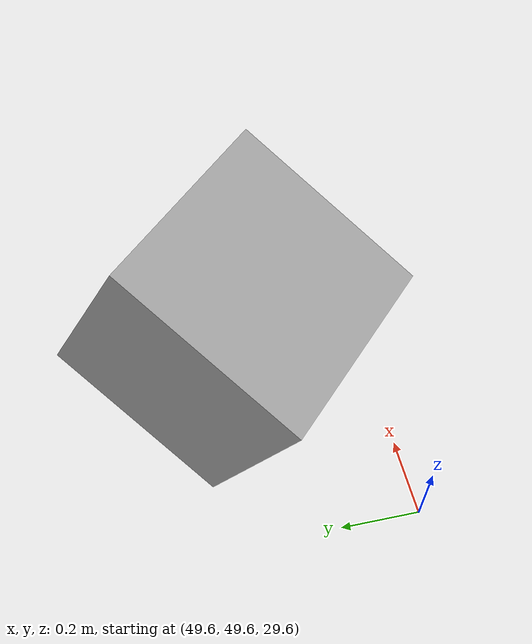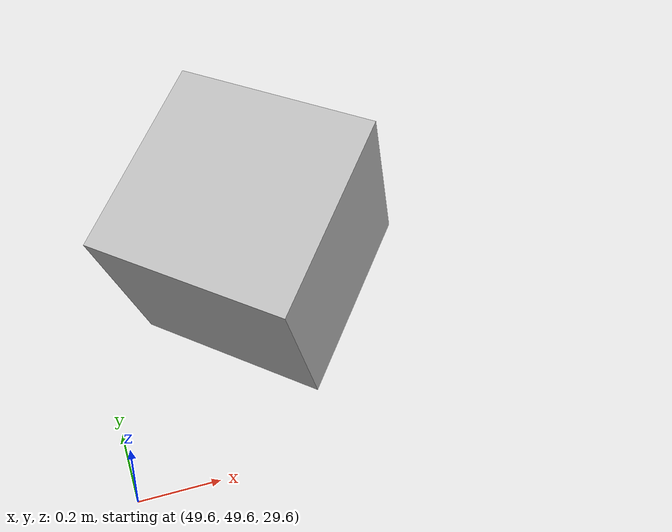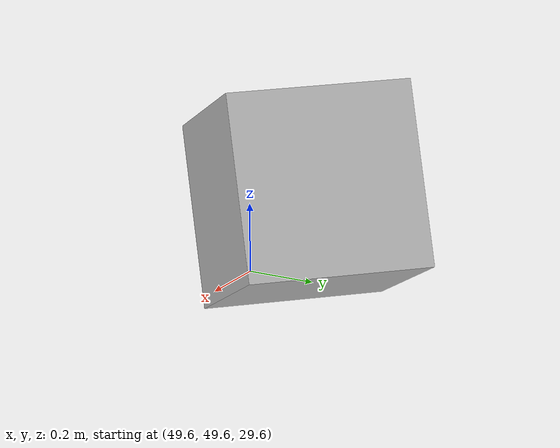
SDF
<?xml version='1.0'?>
<sdf version='1.7'>
  <model name='camera_test'>
    <link name='link'>
      <pose>50 50 30 0 0.45 -2.35</pose>
      <inertial>
        <mass>0.1</mass>
      </inertial>
      <sensor name='camera_test' type='camera'>
        <camera>
          <horizontal_fov>1.047</horizontal_fov>
          <image>
            <width>1920</width>
            <height>1080</height>
          </image>
          <clip>
            <near>0.1</near>
            <far>1000</far>
          </clip>
          <save enabled='0'>
            <path>/media/arvc/data</path>
          </save>
        </camera>
        <always_on>1</always_on>
        <update_rate>100</update_rate>
        <visualize>0</visualize>
      </sensor>
      <self_collide>0</self_collide>
      <enable_wind>0</enable_wind>
      <kinematic>0</kinematic>
      <visual name='visual'>
        <geometry>
          <box>
            <size>0.5 0.5 0.5</size>
          </box>
        </geometry>
        <material>
          <script>
            <uri>__default__</uri>
            <name>__default__</name>
          </script>
          <shader type='pixel'/>
        </material>
        <pose>0 0 0 0 -0 0</pose>
        <transparency>0</transparency>
        <cast_shadows>1</cast_shadows>
      </visual>
      <collision name='collision'>
        <laser_retro>0</laser_retro>
        <max_contacts>10</max_contacts>
        <pose>0 0 0 0 -0 0</pose>
        <geometry>
          <box>
            <size>0.1 0.1 0.1</size>
          </box>
        </geometry>
        <surface>
          <friction>
            <ode>
              <mu>1</mu>
              <mu2>1</mu2>
              <fdir1>0 0 0</fdir1>
              <slip1>0</slip1>
              <slip2>0</slip2>
            </ode>
            <torsional>
              <coefficient>1</coefficient>
              <patch_radius>0</patch_radius>
              <surface_radius>0</surface_radius>
              <use_patch_radius>1</use_patch_radius>
              <ode>
                <slip>0</slip>
              </ode>
            </torsional>
          </friction>
          <bounce>
            <restitution_coefficient>0</restitution_coefficient>
            <threshold>1e+06</threshold>
          </bounce>
          <contact>
            <collide_without_contact>0</collide_without_contact>
            <collide_without_contact_bitmask>1</collide_without_contact_bitmask>
            <collide_bitmask>1</collide_bitmask>
            <ode>
              <soft_cfm>0</soft_cfm>
              <soft_erp>0.2</soft_erp>
              <kp>1e+13</kp>
              <kd>1</kd>
              <max_vel>0.01</max_vel>
              <min_depth>0</min_depth>
            </ode>
            <bullet>
              <split_impulse>1</split_impulse>
              <split_impulse_penetration_threshold>-0.01</split_impulse_penetration_threshold>
              <soft_cfm>0</soft_cfm>
              <soft_erp>0.2</soft_erp>
              <kp>1e+13</kp>
              <kd>1</kd>
            </bullet>
          </contact>
        </surface>
      </collision>
    </link>
    <static>1</static>
    <allow_auto_disable>1</allow_auto_disable>
  </model>
</sdf>
